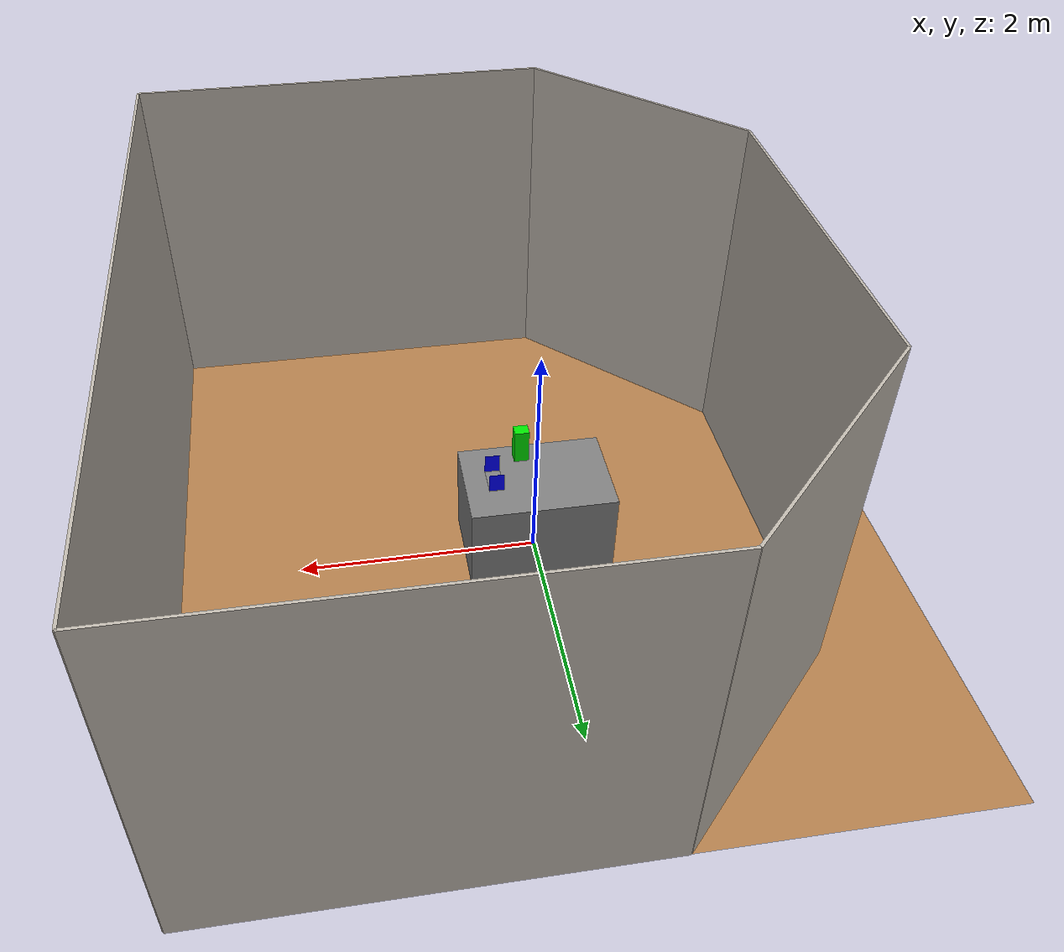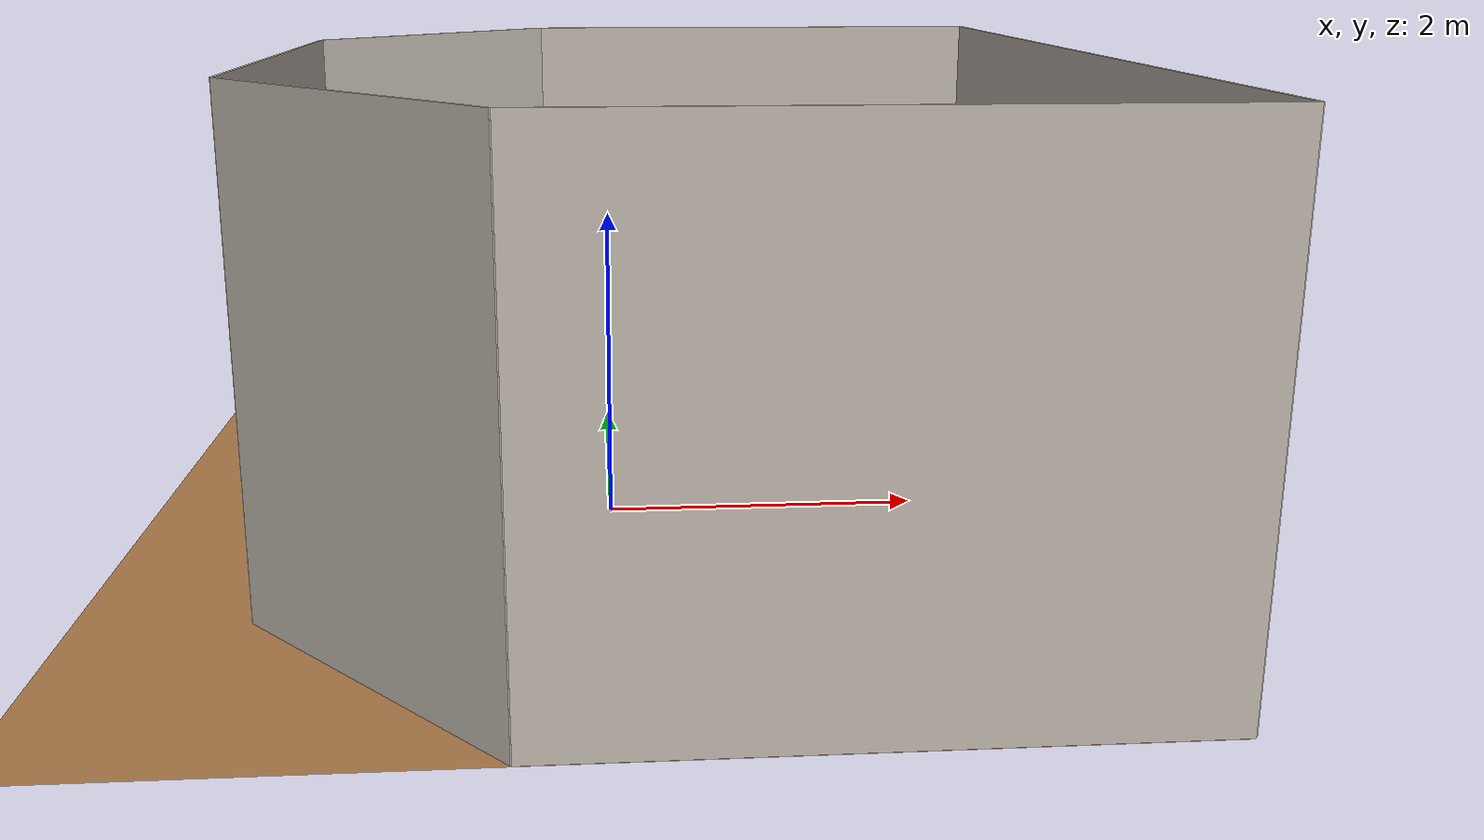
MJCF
<mujoco model="stowing_arena">
  <asset>
    <texture builtin="gradient" height="256" rgb1=".9 .9 1." rgb2=".2 .3 .4" type="skybox" width="256"/>
    <texture file="../textures/wood-tiles.png" type="2d" name="texplane"/>
    <material name="floorplane" reflectance="0.01" shininess="0.0" specular="0.0" texrepeat="2 2" texture="texplane" texuniform="true"/>
    <!-- steel legs -->
    <texture file="../textures/steel-brushed.png" type="cube" name="tex-steel-brushed"/>
    <material name="table_legs_metal" reflectance="0.8" shininess="0.8" texrepeat="1 1" texture="tex-steel-brushed" />
    <!-- plaster walls -->
    <texture file="../textures/cream-plaster.png" type="2d" name="tex-cream-plaster"/>
    <material name="walls_mat" reflectance="0.0" shininess="0.1" specular="0.1" texrepeat="3 3" texture="tex-cream-plaster" texuniform="true" />
    <!-- bins -->
    <texture file="../textures/light-wood.png" type="2d" name="tex-light-wood"/>
    <texture file="../textures/dark-wood.png" type="2d" name="tex-dark-wood"/>
    <material name="light-wood" reflectance="0" texrepeat="15 15" texture="tex-light-wood" texuniform="true"/>
    <material name="dark-wood" reflectance="0" texrepeat="5 5" texture="tex-dark-wood" texuniform="true"/>
    <!-- ceramic table texture and material-->
    <texture file="../textures/ceramic.png" type="cube" name="tex-ceramic"/>
    <material name="table_ceramic" reflectance="0.0" shininess="0.0" specular="0.2" texrepeat="1 1" texture="tex-ceramic" />
  </asset>
  <worldbody>
    <geom condim="3" group="1" material="floorplane" name="floor" pos="0 0 0" size="3 3 .125" type="plane"/>
    <!-- Table body -->
    <body name="table" pos="0 0 0.4">
      <geom pos="0 0 0" size="0.6 0.4 0.4" type="box" group="0" name="table_collision" friction="0.3 0.005 0.0001"/>
      <geom pos="0 0 0" size="0.6 0.4 0.4" type="box" conaffinity="0" contype="0" group="1" name="table_visual" material="table_ceramic"/>
      <site pos="0 0 0.4" name="table_top" size="0.001 0.001 0.001" rgba="0 0 0 0"/>
      <!-- Legs (visual only) -->
      <geom pos="0 0 0" size="0.05 0.1" type="cylinder" conaffinity="0" contype="0" group="1" name="table_leg1_visual" material="table_legs_metal"/>
      <geom pos="0 0 0" size="0.05 0.1" type="cylinder" conaffinity="0" contype="0" group="1" name="table_leg2_visual" material="table_legs_metal"/>
      <geom pos="0 0 0" size="0.05 0.1" type="cylinder" conaffinity="0" contype="0" group="1" name="table_leg3_visual" material="table_legs_metal"/>
      <geom pos="0 0 0" size="0.05 0.1" type="cylinder" conaffinity="0" contype="0" group="1" name="table_leg4_visual" material="table_legs_metal"/>
    </body>

    <!-- Walls (visual only) -->
    <geom pos="-1.25 2.25 1.5" quat="0.6532815 0.6532815 0.2705981 0.2705981" size="1.06 1.5 0.01" type="box" conaffinity="0" contype="0" group="1" name="wall_leftcorner_visual" material="walls_mat"/>
    <geom pos="-1.25 -2.25 1.5" quat="0.6532815 0.6532815 -0.2705981 -0.2705981" size="1.06 1.5 0.01" type="box" conaffinity="0" contype="0" group="1" name="wall_rightcorner_visual" material="walls_mat"/>
    <geom pos="1.25 3 1.5" quat="0.7071 0.7071 0 0" size="1.75 1.5 0.01" type="box" conaffinity="0" contype="0" group="1" name="wall_left_visual" material="walls_mat"/>
    <geom pos="1.25 -3 1.5" quat="0.7071 -0.7071 0 0" size="1.75 1.5 0.01" type="box" conaffinity="0" contype="0" group="1" name="wall_right_visual" material="walls_mat"/>
    <geom pos="-2 0 1.5" quat="0.5 0.5 0.5 0.5" size="1.5 1.5 0.01" type="box" conaffinity="0" contype="0" group="1" name="wall_rear_visual" material="walls_mat"/>
    <geom pos="3 0 1.5" quat="0.5 0.5 -0.5 -0.5" size="3 1.5 0.01" type="box" conaffinity="0" contype="0" group="1" name="wall_front_visual" material="walls_mat"/>
    <!-- bins -->
    <body name="shelf" pos="0.35 0 0.8" >
        <geom pos="0 0 0" size="0.0625 0.1175 0.0005" type="box" group="0" friction="1 0.005 0.0001" name="shelf_bottom_collision"/>
        <geom pos="0 0 0" size="0.0625 0.1175 0.0005" type="box" conaffinity="0" contype="0" group="1" name="shelf_bottom_visual" material="light-wood" />
        <geom pos="0 0.117 0.0835" size="0.0625 0.00005 0.0835" type="box" group="0" friction="1 0.005 0.0001" rgba="0 0 1 1 " name="shelf_right_collision"/>
        <geom pos="0 0.117 0.0835" size="0.0625 0.00005 0.0835" type="box" conaffinity="0" contype="0" group="1" material="light-wood" name="shelf_right_visual"/>
        <geom pos="0 -0.117 0.0835" size="0.0625 0.00005 0.0835" type="box" group="0" friction="1 0.005 0.0001" rgba="0 0 1 1" name="shelf_left_collision"/>
        <geom pos="0 -0.117 0.0835" size="0.0625 0.00005 0.0835" type="box" conaffinity="0" contype="0" group="1" material="light-wood" name="shelf_left_visual"/>
        <!-- Legs (visual only) -->
    </body>
    <body name="box" pos="0.1 -0.2 1">
    <!-- 6 dof -->
      <joint type="free"/>
      <geom type="box" size="0.06 0.05 0.15" friction="1" euler= "0 0 0" rgba="0 .9 0 1"/>
    </body>

    <light pos="1.0 1.0 1.5" dir="-0.2 -0.2 -1" specular="0.3 0.3 0.3" directional="true" castshadow="false"/>
    <!-- front view -->
    <camera mode="fixed" name="frontview" pos="1.6 0 1.45" quat="0.56 0.43 0.43 0.56"/>
    <!-- bird view -->
    <camera mode="fixed" name="birdview" pos="-0.2 0 3.0" quat="0.7071 0 0 0.7071"/>
    <!-- agent view -->
    <camera mode="fixed" name="agentview" pos="1.5 0 2.45" quat="0.653 0.271 0.271 0.653"/>
    <!-- side view -->
    <camera mode="fixed" name="sideview" pos="-0.05651774593317116 1.2761224129427358 1.4879572214102434" quat="0.009905065491771751 0.006877963156909582 0.5912228352893879 0.806418094001364" />
    <!-- quat scalar first -->
    <camera mode="fixed" name="cam_1" pos="-0.44675791731108677 0.34306124544170413 1.3808820466643639" quat="0.3617766797542572 0.2232322096824646 -0.4631667733192444 -0.7776641845703125" />
    <camera mode="fixed" name="cam_2" pos="0.649045 0.5120899999999999 1.52376" quat="0.3113839030265808 0.12753650546073914 0.35117024183273315 0.8737584948539734" />
    <camera mode="fixed" name="cam_3" pos="0.6490445481702322 -0.5120897077156527 1.52375939060387" quat="0.7766200304031372 0.35537970066070557 0.0947272777557373 0.5114619731903076" />
    <camera mode="fixed" name="cam_4" pos="-0.6109497446195349 -0.49831416844507237 1.4944516712656408" quat="0.7372738122940063 0.36237767338752747 -0.2755787968635559 -0.4991656541824341" />

    <camera mode="fixed" name="paper" pos="0.8006967857650461 -0.08940646457330322 1.5396551439293946" quat="0.6440190076828003 0.2820746600627899 0.29403531551361084 0.6474691033363342" />
    <camera mode="fixed" name="cam_slide" pos="0.6484293264549131 -0.04383541963445736 1.338449720283494" quat="0.6645715236663818 0.2537079155445099 0.24247753620147705 0.6596829891204834" />
    <camera mode="fixed" name="cam_push" pos="0.0369925993518557 -0.20278079178692254 1.3892564096348934" quat="0.7077345252037048 0.0546099953353405 0.06976878643035889 0.7009007930755615" />

  </worldbody>
</mujoco>
